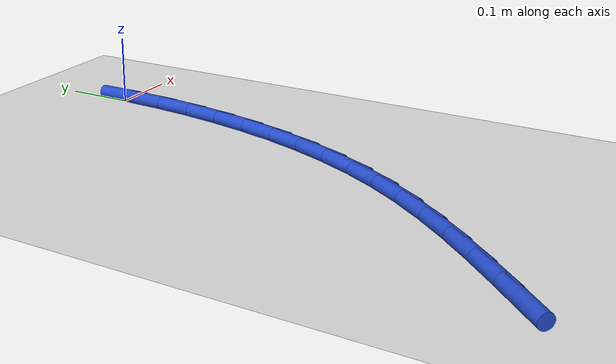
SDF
<sdf version="1.6">
 <world name="default">
  <model name="ground_plane">
   <static>1</static>
   <link name="link">
    <collision name="collision">
     <geometry><plane><normal>0 0 1</normal><size>100 100</size></plane></geometry>
     <surface><friction><ode><mu>100</mu><mu2>50</mu2></ode></friction></surface>
    </collision>
    <visual name="visual">
     <cast_shadows>0</cast_shadows>
     <geometry><plane><normal>0 0 1</normal><size>100 100</size></plane></geometry>
     <material>
      <script><uri>file://media/materials/scripts/gazebo.material</uri><name>Gazebo/WhiteGlow</name></script>
     </material>
    </visual>
   </link>
  </model>
  <model name="line">
   <link name="link_115">
    <pose>-0.31678240096817584 -0.7081827549148968 0.01 0 1.57 0.7896219247973819</pose>
    <collision name="collision">
     <geometry><cylinder><radius>0.01</radius><length>0.08</length></cylinder></geometry>
    </collision>
    <visual name="visual">
     <material>
      <script><name>Gazebo/Blue</name><uri>file://media/materials/scripts/gazebo.material</uri></script>
     </material>
     <geometry><cylinder><radius>0.01</radius><length>0.08</length></cylinder></geometry>
    </visual>
   </link>
   <link name="link_116">
    <pose>-0.27865388642187383 -0.6697307807327895 0.01 0 1.57 0.8097723088822163</pose>
    <collision name="collision">
     <geometry><cylinder><radius>0.01</radius><length>0.08</length></cylinder></geometry>
    </collision>
    <visual name="visual">
     <material>
      <script><name>Gazebo/Blue</name><uri>file://media/materials/scripts/gazebo.material</uri></script>
     </material>
     <geometry><cylinder><radius>0.01</radius><length>0.08</length></cylinder></geometry>
    </visual>
   </link>
   <link name="link_117">
    <pose>-0.2418732988798145 -0.6311120348376659 0.01 0 1.57 0.8410854221465837</pose>
    <collision name="collision">
     <geometry><cylinder><radius>0.01</radius><length>0.08</length></cylinder></geometry>
    </collision>
    <visual name="visual">
     <material>
      <script><name>Gazebo/Blue</name><uri>file://media/materials/scripts/gazebo.material</uri></script>
     </material>
     <geometry><cylinder><radius>0.01</radius><length>0.08</length></cylinder></geometry>
    </visual>
   </link>
   <link name="link_118">
    <pose>-0.2068146779531713 -0.5919139836219283 0.01 0 1.57 0.8838759567051857</pose>
    <collision name="collision">
     <geometry><cylinder><radius>0.01</radius><length>0.08</length></cylinder></geometry>
    </collision>
    <visual name="visual">
     <material>
      <script><name>Gazebo/Blue</name><uri>file://media/materials/scripts/gazebo.material</uri></script>
     </material>
     <geometry><cylinder><radius>0.01</radius><length>0.08</length></cylinder></geometry>
    </visual>
   </link>
   <link name="link_119">
    <pose>-0.1738520632531192 -0.5517240934779807 0.01 0 1.57 0.9382021374328496</pose>
    <collision name="collision">
     <geometry><cylinder><radius>0.01</radius><length>0.08</length></cylinder></geometry>
    </collision>
    <visual name="visual">
     <material>
      <script><name>Gazebo/Blue</name><uri>file://media/materials/scripts/gazebo.material</uri></script>
     </material>
     <geometry><cylinder><radius>0.01</radius><length>0.08</length></cylinder></geometry>
    </visual>
   </link>
   <link name="link_120">
    <pose>-0.14335949439083157 -0.5101298307982252 0.01 0 1.57 1.0036869123882142</pose>
    <collision name="collision">
     <geometry><cylinder><radius>0.01</radius><length>0.08</length></cylinder></geometry>
    </collision>
    <visual name="visual">
     <material>
      <script><name>Gazebo/Blue</name><uri>file://media/materials/scripts/gazebo.material</uri></script>
     </material>
     <geometry><cylinder><radius>0.01</radius><length>0.08</length></cylinder></geometry>
    </visual>
   </link>
   <link name="link_121">
    <pose>-0.11571101097748238 -0.46671866197506484 0.01 0 1.57 1.077339739152784</pose>
    <collision name="collision">
     <geometry><cylinder><radius>0.01</radius><length>0.08</length></cylinder></geometry>
    </collision>
    <visual name="visual">
     <material>
      <script><name>Gazebo/Blue</name><uri>file://media/materials/scripts/gazebo.material</uri></script>
     </material>
     <geometry><cylinder><radius>0.01</radius><length>0.08</length></cylinder></geometry>
    </visual>
   </link>
   <link name="link_122">
    <pose>-0.0912120028518156 -0.4211676173889994 0.01 0 1.57 1.1490517303446808</pose>
    <collision name="collision">
     <geometry><cylinder><radius>0.01</radius><length>0.08</length></cylinder></geometry>
    </collision>
    <visual name="visual">
     <material>
      <script><name>Gazebo/Blue</name><uri>file://media/materials/scripts/gazebo.material</uri></script>
     </material>
     <geometry><cylinder><radius>0.01</radius><length>0.08</length></cylinder></geometry>
    </visual>
   </link>
   <link name="link_123">
    <pose>-0.0698536773017134 -0.3735636259715296 0.01 0 1.57 1.2160834596459316</pose>
    <collision name="collision">
     <geometry><cylinder><radius>0.01</radius><length>0.08</length></cylinder></geometry>
    </collision>
    <visual name="visual">
     <material>
      <script><name>Gazebo/Blue</name><uri>file://media/materials/scripts/gazebo.material</uri></script>
     </material>
     <geometry><cylinder><radius>0.01</radius><length>0.08</length></cylinder></geometry>
    </visual>
   </link>
   <link name="link_124">
    <pose>-0.05153741393473739 -0.3241108104190655 0.01 0 1.57 1.2785573235120582</pose>
    <collision name="collision">
     <geometry><cylinder><radius>0.01</radius><length>0.08</length></cylinder></geometry>
    </collision>
    <visual name="visual">
     <material>
      <script><name>Gazebo/Blue</name><uri>file://media/materials/scripts/gazebo.material</uri></script>
     </material>
     <geometry><cylinder><radius>0.01</radius><length>0.08</length></cylinder></geometry>
    </visual>
   </link>
   <link name="link_125">
    <pose>-0.036164585258413554 -0.2730133026910817 0.01 0 1.57 1.3367116948526299</pose>
    <collision name="collision">
     <geometry><cylinder><radius>0.01</radius><length>0.08</length></cylinder></geometry>
    </collision>
    <visual name="visual">
     <material>
      <script><name>Gazebo/Blue</name><uri>file://media/materials/scripts/gazebo.material</uri></script>
     </material>
     <geometry><cylinder><radius>0.01</radius><length>0.08</length></cylinder></geometry>
    </visual>
   </link>
   <link name="link_126">
    <pose>-0.023636563780268106 -0.22047523474705255 0.01 0 1.57 1.3908589315518238</pose>
    <collision name="collision">
     <geometry><cylinder><radius>0.01</radius><length>0.08</length></cylinder></geometry>
    </collision>
    <visual name="visual">
     <material>
      <script><name>Gazebo/Blue</name><uri>file://media/materials/scripts/gazebo.material</uri></script>
     </material>
     <geometry><cylinder><radius>0.01</radius><length>0.08</length></cylinder></geometry>
    </visual>
   </link>
   <link name="link_127">
    <pose>-0.013854722007827804 -0.16670073854645498 0.01 0 1.57 1.441352547991623</pose>
    <collision name="collision">
     <geometry><cylinder><radius>0.01</radius><length>0.08</length></cylinder></geometry>
    </collision>
    <visual name="visual">
     <material>
      <script><name>Gazebo/Blue</name><uri>file://media/materials/scripts/gazebo.material</uri></script>
     </material>
     <geometry><cylinder><radius>0.01</radius><length>0.08</length></cylinder></geometry>
    </visual>
   </link>
   <link name="link_128">
    <pose>-0.006720432448618773 -0.1118939460487636 0.01 0 1.57 1.488563417137133</pose>
    <collision name="collision">
     <geometry><cylinder><radius>0.01</radius><length>0.08</length></cylinder></geometry>
    </collision>
    <visual name="visual">
     <material>
      <script><name>Gazebo/Blue</name><uri>file://media/materials/scripts/gazebo.material</uri></script>
     </material>
     <geometry><cylinder><radius>0.01</radius><length>0.08</length></cylinder></geometry>
    </visual>
   </link>
   <link name="link_129">
    <pose>-0.00213506761016738 -0.05625898921345355 0.01 0 1.57 1.5328638379451176</pose>
    <collision name="collision">
     <geometry><cylinder><radius>0.01</radius><length>0.08</length></cylinder></geometry>
    </collision>
    <visual name="visual">
     <material>
      <script><name>Gazebo/Blue</name><uri>file://media/materials/scripts/gazebo.material</uri></script>
     </material>
     <geometry><cylinder><radius>0.01</radius><length>0.08</length></cylinder></geometry>
    </visual>
   </link>
   <link name="link_130">
    <pose>1.734723475976807e-18 -1.3877787807814457e-16 0.01 0 1.57 -1.5669747792555502</pose>
    <collision name="collision">
     <geometry><cylinder><radius>0.01</radius><length>0.08</length></cylinder></geometry>
    </collision>
    <visual name="visual">
     <material>
      <script><name>Gazebo/Blue</name><uri>file://media/materials/scripts/gazebo.material</uri></script>
     </material>
     <geometry><cylinder><radius>0.01</radius><length>0.08</length></cylinder></geometry>
    </visual>
   </link>
  </model>
 </world>
</sdf>
